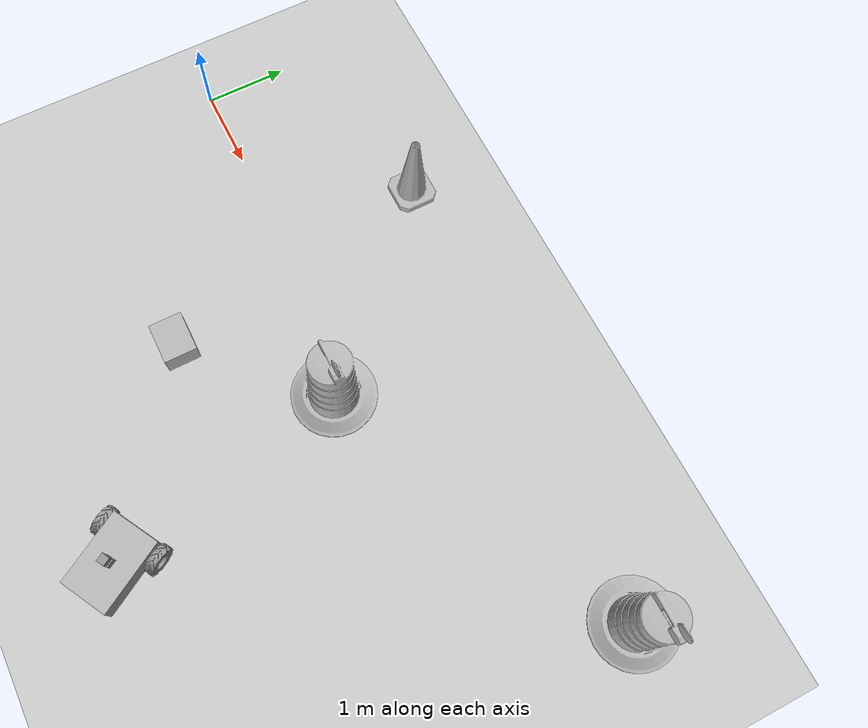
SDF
<sdf version="1.6">
 <world name="default">
  <model name="ground_plane">
   <static>1</static>
   <link name="link">
    <collision name="collision">
     <geometry><plane><normal>0 0 1</normal><size>100 100</size></plane></geometry>
     <surface>
      <contact><collide_bitmask>65535</collide_bitmask></contact>
      <friction><ode><mu>100</mu><mu2>50</mu2></ode></friction>
     </surface>
    </collision>
    <visual name="visual">
     <cast_shadows>0</cast_shadows>
     <geometry><plane><normal>0 0 1</normal><size>100 100</size></plane></geometry>
     <material>
      <script><uri>file://media/materials/scripts/gazebo.material</uri><name>Gazebo/Grey</name></script>
     </material>
    </visual>
   </link>
  </model>
  <light name="sun" type="directional">
   <pose>0 0 10 0 -0 0</pose>
   <diffuse>0.8 0.8 0.8 1</diffuse>
   <specular>0.2 0.2 0.2 1</specular>
   <attenuation>
    <range>1000</range>
    <constant>0.9</constant>
    <linear>0.01</linear>
    <quadratic>0.001</quadratic>
   </attenuation>
   <direction>-0.5 0.1 -0.9</direction>
  </light>
  <model name="bowser2">
   <pose>5.02487 -3.25975 0.226481 1e-06 -0.004235 2.09183</pose>
   <static>0</static>
   <link name="base_link">
    <inertial>
     <mass>10</mass>
     <inertia><ixx>0.3735</ixx><ixy>0</ixy><ixz>0</ixz><iyy>0.747</iyy><iyz>0</iyz><izz>0.9711</izz></inertia>
    </inertial>
    <collision name="collision"><geometry><box><size>0.9 0.6 0.3</size></box></geometry></collision>
    <visual name="visual"><geometry><box><size>0.9 0.6 0.3</size></box></geometry></visual>
    <collision name="caster_collision">
     <pose>-0.35 0 -0.15 0 -0 0</pose>
     <geometry><sphere><radius>0.075</radius></sphere></geometry>
     <surface><friction><ode><mu>0</mu><mu2>0</mu2><slip1>1</slip1><slip2>1</slip2></ode></friction></surface>
    </collision>
    <visual name="caster_visual">
     <pose>-0.35 0 -0.15 0 -0 0</pose>
     <geometry><sphere><radius>0.075</radius></sphere></geometry>
    </visual>
   </link>
   <link name="front_right_wheel">
    <pose>0.3 -0.37 -0.05 0 -0 0</pose>
    <inertial>
     <mass>2.6357</mass>
     <inertia>
      <ixx>0.0246688</ixx>
      <ixy>0</ixy>
      <ixz>0</ixz>
      <iyy>0.0246688</iyy>
      <iyz>0</iyz>
      <izz>0.0441058</izz>
     </inertia>
    </inertial>
    <collision name="front_right_wheel_collision">
     <pose>0 0 0 -1.5707 0 0</pose>
     <geometry><cylinder><radius>0.17775</radius><length>0.1143</length></cylinder></geometry>
     <surface>
      <friction><ode><mu>100000</mu><mu2>100000</mu2><slip1>0</slip1><slip2>0</slip2></ode></friction>
     </surface>
    </collision>
    <visual name="front_right_wheel">
     <pose>0 0 0 -3.14159 0 0</pose>
     <geometry><mesh><uri>model://husky/meshes/wheel.stl</uri></mesh></geometry>
     <material><script><name>Gazebo/Grey</name><uri>__default__</uri></script></material>
    </visual>
   </link>
   <joint name="front_right_joint" type="revolute">
    <parent>base_link</parent>
    <child>front_right_wheel</child>
    <axis>
     <xyz>0 1 0</xyz>
     <use_parent_model_frame>1</use_parent_model_frame>
     <limit><lower>-1e+16</lower><upper>1e+16</upper></limit>
     <dynamics><spring_reference>0</spring_reference><spring_stiffness>0</spring_stiffness></dynamics>
    </axis>
    <physics><ode><limit><cfm>0</cfm><erp>0.9</erp></limit></ode></physics>
   </joint>
   <link name="front_left_wheel">
    <pose>0.3 0.37 -0.05 0 -0 0</pose>
    <inertial>
     <mass>2.6357</mass>
     <inertia>
      <ixx>0.0246688</ixx>
      <ixy>0</ixy>
      <ixz>0</ixz>
      <iyy>0.0246688</iyy>
      <iyz>0</iyz>
      <izz>0.0441058</izz>
     </inertia>
    </inertial>
    <collision name="front_left_wheel_collision">
     <pose>0 0 0 -1.5707 0 0</pose>
     <geometry><cylinder><radius>0.17775</radius><length>0.1143</length></cylinder></geometry>
     <surface>
      <friction><ode><mu>100000</mu><mu2>100000</mu2><slip1>0</slip1><slip2>0</slip2></ode></friction>
     </surface>
    </collision>
    <visual name="front_left_wheel">
     <pose>0 0 0 -3.14159 0 0</pose>
     <geometry><mesh><uri>model://husky/meshes/wheel.stl</uri></mesh></geometry>
     <material><script><name>Gazebo/Grey</name><uri>__default__</uri></script></material>
    </visual>
   </link>
   <joint name="front_left_joint" type="revolute">
    <parent>base_link</parent>
    <child>front_left_wheel</child>
    <axis>
     <xyz>0 1 0</xyz>
     <use_parent_model_frame>1</use_parent_model_frame>
     <limit><lower>-1e+16</lower><upper>1e+16</upper></limit>
     <dynamics><spring_reference>0</spring_reference><spring_stiffness>0</spring_stiffness></dynamics>
    </axis>
    <physics><ode><limit><cfm>0</cfm><erp>0.9</erp></limit></ode></physics>
   </joint>
   <link name="imu_link">
    <visual name="imu_link_visual"><geometry><box><size>0.1 0.1 0.1</size></box></geometry></visual>
    <collision name="imu_link_collision"><geometry><box><size>0.1 0.1 0.1</size></box></geometry></collision>
    <sensor name="imu_sensor" type="imu">
     <always_on>1</always_on>
     <plugin name="imu_plugin" filename="libgazebo_ros_imu_sensor.so">
      <robotNamespace>bowser2</robotNamespace>
      <topicName>imu</topicName>
      <updateRateHZ>30</updateRateHZ>
      <frameName>imu_link</frameName>
      <initialOrientationAsReference>0</initialOrientationAsReference>
     </plugin>
    </sensor>
    <inertial>
     <inertia><ixx>1</ixx><ixy>0</ixy><ixz>0</ixz><iyy>1</iyy><iyz>0</iyz><izz>1</izz></inertia>
     <mass>1</mass>
    </inertial>
   </link>
   <joint name="bowser2/imu_joint" type="fixed"><parent>base_link</parent><child>imu_link</child></joint>
   <plugin name="diff_drive_controller" filename="libgazebo_ros_diff_drive.so">
    <robotNamespace>bowser2</robotNamespace>
    <leftJoint>front_left_joint</leftJoint>
    <rightJoint>front_right_joint</rightJoint>
    <wheelSeparation>0.74</wheelSeparation>
    <wheelDiameter>0.3555</wheelDiameter>
    <wheelTorque>20</wheelTorque>
    <odometrySource>world</odometrySource>
    <publishOdom>1</publishOdom>
    <updateRate>100</updateRate>
    <publishTf>1</publishTf>
    <publishOdomTF>1</publishOdomTF>
    <publishWheelTF>1</publishWheelTF>
    <odometryFrame>odom</odometryFrame>
    <robotBaseFrame>base_link</robotBaseFrame>
    <commandTopic>/cmd_vel</commandTopic>
    <odometryTopic>odom</odometryTopic>
   </plugin>
   <joint name="bowser2/camera_joint" type="fixed">
    <parent>base_link</parent>
    <child>camera_link</child>
    <axis>
     <xyz>1 0 0</xyz>
     <use_parent_model_frame>1</use_parent_model_frame>
     <limit><lower>-1e+16</lower><upper>1e+16</upper></limit>
    </axis>
   </joint>
   <link name="camera_link">
    <pose>0 0 0.35 0 -0 0</pose>
    <collision name="camera_collision">
     <pose>0 0 0.1 0 -0 0</pose>
     <geometry><box><size>0.1 0.1 0.1</size></box></geometry>
    </collision>
    <visual name="camera_visual">
     <geometry><box><size>0.1 0.1 0.1</size></box></geometry>
     <material><script><name>Gazebo/Grey</name><uri>__default__</uri></script></material>
    </visual>
    <sensor name="depth_sensor" type="depth">
     <always_on>0</always_on>
     <camera name="bowser2_dc">
      <horizontal_fov>1.57079</horizontal_fov>
      <image><width>640</width><height>480</height></image>
      <clip><near>0.5</near><far>20</far></clip>
      <distortion><k1>0</k1><k2>0</k2><k3>0</k3><p1>0</p1><p2>0</p2><center>0 0</center></distortion>
     </camera>
     <plugin name="bowser2_camera_plugin" filename="libgazebo_ros_depth_camera.so">
      <robotNamespace>bowser2</robotNamespace>
      <always_on>1</always_on>
      <updateRate>0.0</updateRate>
      <cameraName>bowser2_dc</cameraName>
      <baseline>0.05</baseline>
      <pointCloudCutoff>0.05</pointCloudCutoff>
      <pointCloudCutoffMax>20</pointCloudCutoffMax>
      <imageTopicName>image/image</imageTopicName>
      <cameraInfoTopicName>image/camera_info</cameraInfoTopicName>
      <depthImageTopicName>depth/image</depthImageTopicName>
      <depthImageCameraInfoTopicName>depth/camera_info</depthImageCameraInfoTopicName>
      <pointCloudTopicName>depth/points</pointCloudTopicName>
      <frameName>camera_link</frameName>
      <distortionK1>0.0</distortionK1>
      <distortionK2>0.0</distortionK2>
      <distortionK3>0.0</distortionK3>
      <distortionT1>0.0</distortionT1>
      <distortionT2>0.0</distortionT2>
     </plugin>
    </sensor>
    <inertial>
     <inertia><ixx>1</ixx><ixy>0</ixy><ixz>0</ixz><iyy>1</iyy><iyz>0</iyz><izz>1</izz></inertia>
     <mass>1</mass>
    </inertial>
   </link>
   <joint name="bowser2/lidar_joint" type="fixed">
    <parent>base_link</parent>
    <child>lidar_link</child>
    <axis>
     <xyz>0 1 0</xyz>
     <use_parent_model_frame>1</use_parent_model_frame>
     <limit><lower>-1e+16</lower><upper>1e+16</upper></limit>
    </axis>
   </joint>
   <link name="lidar_link">
    <pose>0 0 0.2 0 -0 0</pose>
    <collision name="lidar_collision">
     <pose>0 0 0.1 0 -0 0</pose>
     <geometry><box><size>0.1 0.1 0.1</size></box></geometry>
    </collision>
    <visual name="lidar_visual">
     <geometry><box><size>0.1 0.1 0.1</size></box></geometry>
     <material><script><name>Gazebo/Grey</name><uri>__default__</uri></script></material>
    </visual>
    <sensor name="laser_sensor" type="ray">
     <ray>
      <scan>
       <horizontal>
        <samples>256</samples>
        <resolution>1</resolution>
        <min_angle>-1.5707</min_angle>
        <max_angle>1.5707</max_angle>
       </horizontal>
       <vertical><samples>1</samples><min_angle>0</min_angle><max_angle>0</max_angle></vertical>
      </scan>
      <range><min>0.08</min><max>30</max><resolution>0.01</resolution></range>
     </ray>
     <visualize>0</visualize>
     <plugin name="laser_plugin" filename="libgazebo_ros_laser.so">
      <robotNamespace>bowser2</robotNamespace>
      <updateRate>30</updateRate>
      <topicName>/scan</topicName>
      <frameName>lidar_link</frameName>
      <gaussianNoise>0.01</gaussianNoise>
     </plugin>
    </sensor>
    <inertial>
     <inertia><ixx>1</ixx><ixy>0</ixy><ixz>0</ixz><iyy>1</iyy><iyz>0</iyz><izz>1</izz></inertia>
     <mass>1</mass>
    </inertial>
   </link>
  </model>
  <gravity>0 0 -9.8</gravity>
  <magnetic_field>6e-06 2.3e-05 -4.2e-05</magnetic_field>
  <atmosphere type="adiabatic"/>
  <physics name="default_physics" default="0" type="ode">
   <max_step_size>0.001</max_step_size>
   <real_time_factor>1</real_time_factor>
   <real_time_update_rate>1000</real_time_update_rate>
  </physics>
  <scene><ambient>0.4 0.4 0.4 1</ambient><background>0.7 0.7 0.7 1</background><shadows>1</shadows></scene>
  <audio><device>default</device></audio>
  <spherical_coordinates>
   <surface_model>EARTH_WGS84</surface_model>
   <latitude_deg>0</latitude_deg>
   <longitude_deg>0</longitude_deg>
   <elevation>0</elevation>
   <heading_deg>0</heading_deg>
  </spherical_coordinates>
  <model name="Construction Barrel">
   <link name="link">
    <inertial>
     <pose>0 0 0.4 0 -0 0</pose>
     <mass>500</mass>
     <inertia><ixx>51.2096</ixx><iyy>51.2096</iyy><izz>25</izz><ixy>0</ixy><ixz>0</ixz><iyz>0</iyz></inertia>
    </inertial>
    <collision name="collision">
     <geometry><mesh><uri>model://construction_barrel/meshes/construction_barrel.dae</uri></mesh></geometry>
    </collision>
    <visual name="visual">
     <geometry><mesh><uri>model://construction_barrel/meshes/construction_barrel.dae</uri></mesh></geometry>
    </visual>
   </link>
   <pose>4.32608 -0.301394 -0.000199 1.3e-05 1.2e-05 -1e-05</pose>
  </model>
  <model name="Construction Cone">
   <link name="link">
    <collision name="collision">
     <geometry>
      <mesh><scale>10 10 10</scale><uri>model://construction_cone/meshes/construction_cone.dae</uri></mesh>
     </geometry>
    </collision>
    <visual name="visual">
     <geometry>
      <mesh><scale>10 10 10</scale><uri>model://construction_cone/meshes/construction_cone.dae</uri></mesh>
     </geometry>
    </visual>
    <inertial>
     <inertia><ixx>1</ixx><ixy>0</ixy><ixz>0</ixz><iyy>1</iyy><iyz>0</iyz><izz>1</izz></inertia>
     <mass>1</mass>
    </inertial>
   </link>
   <pose>2.35756 1.73212 -5e-06 -4e-06 1e-06 0</pose>
  </model>
  <model name="Construction Barrel_0">
   <link name="link">
    <inertial>
     <pose>0 0 0.4 0 -0 0</pose>
     <mass>500</mass>
     <inertia><ixx>51.2096</ixx><iyy>51.2096</iyy><izz>25</izz><ixy>0</ixy><ixz>0</ixz><iyz>0</iyz></inertia>
    </inertial>
    <collision name="collision">
     <geometry><mesh><uri>model://construction_barrel/meshes/construction_barrel.dae</uri></mesh></geometry>
    </collision>
    <visual name="visual">
     <geometry><mesh><uri>model://construction_barrel/meshes/construction_barrel.dae</uri></mesh></geometry>
    </visual>
   </link>
   <pose>8.06155 1.46755 -2.1e-05 7e-06 -1.6e-05 -0.000639</pose>
  </model>
  <model name="cardboard_box">
   <pose>2.95124 -1.70223 0.14951 2e-06 -2e-06 -0</pose>
   <link name="link">
    <inertial>
     <mass>2</mass>
     <inertia>
      <ixx>0.0416667</ixx>
      <ixy>0</ixy>
      <ixz>0</ixz>
      <iyy>0.0566667</iyy>
      <iyz>0</iyz>
      <izz>0.0683333</izz>
     </inertia>
    </inertial>
    <collision name="collision">
     <geometry><box><size>0.5 0.4 0.3</size></box></geometry>
     <surface>
      <friction><ode><mu>1</mu><mu2>1</mu2></ode></friction>
      <contact><ode><kp>1e+07</kp><kd>1</kd><min_depth>0.001</min_depth><max_vel>0.1</max_vel></ode></contact>
     </surface>
    </collision>
    <visual name="visual">
     <pose>0 0 -0.15 0 -0 0</pose>
     <geometry>
      <mesh><uri>model://cardboard_box/meshes/cardboard_box.dae</uri><scale>1.25932 1.00745 0.755591</scale></mesh>
     </geometry>
    </visual>
   </link>
  </model>
 </world>
</sdf>
